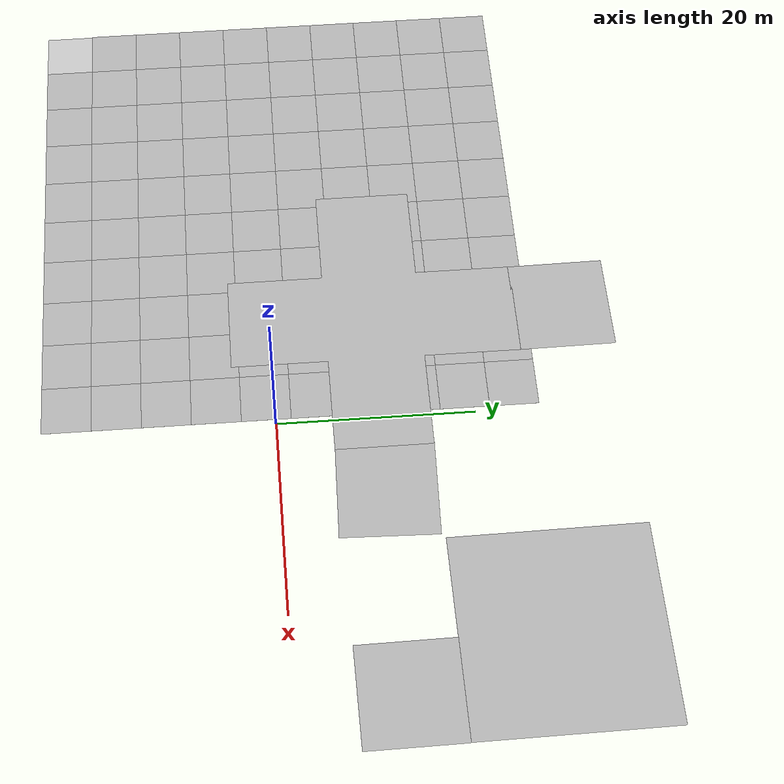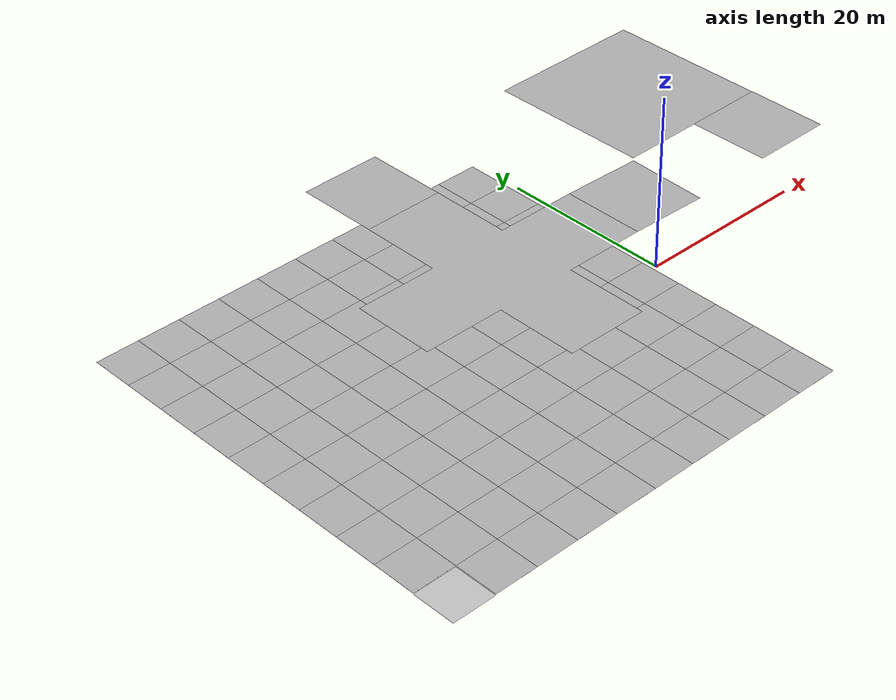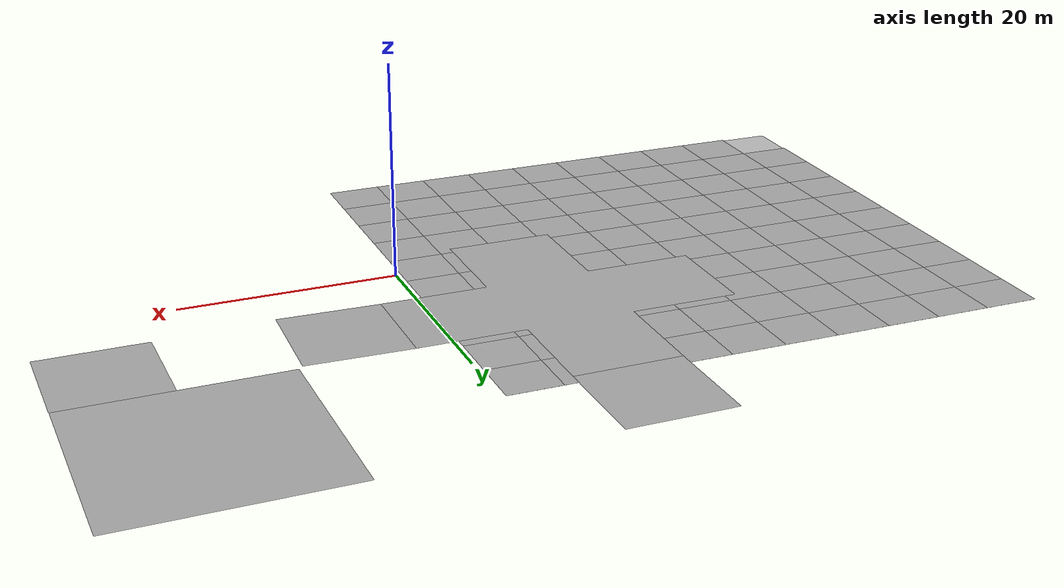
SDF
<sdf version="1.4">
 <world name="default">
  <model name="pavement_plane_1">
   <static>1</static>
   <link name="link">
    <collision name="collision">
     <geometry><plane><normal>0 0 1</normal><size>50 50</size></plane></geometry>
     <surface><friction><ode><mu>100</mu><mu2>50</mu2></ode></friction></surface>
    </collision>
    <visual name="visual_0">
     <pose>-25 -25 0 0 -0 0</pose>
     <cast_shadows>0</cast_shadows>
     <geometry><plane><normal>0 0 1</normal><size>5 5</size></plane></geometry>
     <material>
      <script>
       <uri>model://pavement_plane/materials/scripts</uri>
       <uri>model://pavement_plane/materials/textures</uri>
       <name>vrc/pavement</name>
      </script>
     </material>
    </visual>
    <visual name="visual_1">
     <pose>-20 -25 0 0 -0 0</pose>
     <cast_shadows>0</cast_shadows>
     <geometry><plane><normal>0 0 1</normal><size>5 5</size></plane></geometry>
     <material>
      <script>
       <uri>model://pavement_plane/materials/scripts</uri>
       <uri>model://pavement_plane/materials/textures</uri>
       <name>vrc/pavement</name>
      </script>
     </material>
    </visual>
    <visual name="visual_2">
     <pose>-15 -25 0 0 -0 0</pose>
     <cast_shadows>0</cast_shadows>
     <geometry><plane><normal>0 0 1</normal><size>5 5</size></plane></geometry>
     <material>
      <script>
       <uri>model://pavement_plane/materials/scripts</uri>
       <uri>model://pavement_plane/materials/textures</uri>
       <name>vrc/pavement</name>
      </script>
     </material>
    </visual>
    <visual name="visual_3">
     <pose>-10 -25 0 0 -0 0</pose>
     <cast_shadows>0</cast_shadows>
     <geometry><plane><normal>0 0 1</normal><size>5 5</size></plane></geometry>
     <material>
      <script>
       <uri>model://pavement_plane/materials/scripts</uri>
       <uri>model://pavement_plane/materials/textures</uri>
       <name>vrc/pavement</name>
      </script>
     </material>
    </visual>
    <visual name="visual_4">
     <pose>-5 -25 0 0 -0 0</pose>
     <cast_shadows>0</cast_shadows>
     <geometry><plane><normal>0 0 1</normal><size>5 5</size></plane></geometry>
     <material>
      <script>
       <uri>model://pavement_plane/materials/scripts</uri>
       <uri>model://pavement_plane/materials/textures</uri>
       <name>vrc/pavement</name>
      </script>
     </material>
    </visual>
    <visual name="visual_5">
     <pose>0 -25 0 0 -0 0</pose>
     <cast_shadows>0</cast_shadows>
     <geometry><plane><normal>0 0 1</normal><size>5 5</size></plane></geometry>
     <material>
      <script>
       <uri>model://pavement_plane/materials/scripts</uri>
       <uri>model://pavement_plane/materials/textures</uri>
       <name>vrc/pavement</name>
      </script>
     </material>
    </visual>
    <visual name="visual_6">
     <pose>5 -25 0 0 -0 0</pose>
     <cast_shadows>0</cast_shadows>
     <geometry><plane><normal>0 0 1</normal><size>5 5</size></plane></geometry>
     <material>
      <script>
       <uri>model://pavement_plane/materials/scripts</uri>
       <uri>model://pavement_plane/materials/textures</uri>
       <name>vrc/pavement</name>
      </script>
     </material>
    </visual>
    <visual name="visual_7">
     <pose>10 -25 0 0 -0 0</pose>
     <cast_shadows>0</cast_shadows>
     <geometry><plane><normal>0 0 1</normal><size>5 5</size></plane></geometry>
     <material>
      <script>
       <uri>model://pavement_plane/materials/scripts</uri>
       <uri>model://pavement_plane/materials/textures</uri>
       <name>vrc/pavement</name>
      </script>
     </material>
    </visual>
    <visual name="visual_8">
     <pose>15 -25 0 0 -0 0</pose>
     <cast_shadows>0</cast_shadows>
     <geometry><plane><normal>0 0 1</normal><size>5 5</size></plane></geometry>
     <material>
      <script>
       <uri>model://pavement_plane/materials/scripts</uri>
       <uri>model://pavement_plane/materials/textures</uri>
       <name>vrc/pavement</name>
      </script>
     </material>
    </visual>
    <visual name="visual_9">
     <pose>20 -25 0 0 -0 0</pose>
     <cast_shadows>0</cast_shadows>
     <geometry><plane><normal>0 0 1</normal><size>5 5</size></plane></geometry>
     <material>
      <script>
       <uri>model://pavement_plane/materials/scripts</uri>
       <uri>model://pavement_plane/materials/textures</uri>
       <name>vrc/pavement</name>
      </script>
     </material>
    </visual>
    <visual name="visual_10">
     <pose>-25 -20 0 0 -0 0</pose>
     <cast_shadows>0</cast_shadows>
     <geometry><plane><normal>0 0 1</normal><size>5 5</size></plane></geometry>
     <material>
      <script>
       <uri>model://pavement_plane/materials/scripts</uri>
       <uri>model://pavement_plane/materials/textures</uri>
       <name>vrc/pavement</name>
      </script>
     </material>
    </visual>
    <visual name="visual_11">
     <pose>-20 -20 0 0 -0 0</pose>
     <cast_shadows>0</cast_shadows>
     <geometry><plane><normal>0 0 1</normal><size>5 5</size></plane></geometry>
     <material>
      <script>
       <uri>model://pavement_plane/materials/scripts</uri>
       <uri>model://pavement_plane/materials/textures</uri>
       <name>vrc/pavement</name>
      </script>
     </material>
    </visual>
    <visual name="visual_12">
     <pose>-15 -20 0 0 -0 0</pose>
     <cast_shadows>0</cast_shadows>
     <geometry><plane><normal>0 0 1</normal><size>5 5</size></plane></geometry>
     <material>
      <script>
       <uri>model://pavement_plane/materials/scripts</uri>
       <uri>model://pavement_plane/materials/textures</uri>
       <name>vrc/pavement</name>
      </script>
     </material>
    </visual>
    <visual name="visual_13">
     <pose>-10 -20 0 0 -0 0</pose>
     <cast_shadows>0</cast_shadows>
     <geometry><plane><normal>0 0 1</normal><size>5 5</size></plane></geometry>
     <material>
      <script>
       <uri>model://pavement_plane/materials/scripts</uri>
       <uri>model://pavement_plane/materials/textures</uri>
       <name>vrc/pavement</name>
      </script>
     </material>
    </visual>
    <visual name="visual_14">
     <pose>-5 -20 0 0 -0 0</pose>
     <cast_shadows>0</cast_shadows>
     <geometry><plane><normal>0 0 1</normal><size>5 5</size></plane></geometry>
     <material>
      <script>
       <uri>model://pavement_plane/materials/scripts</uri>
       <uri>model://pavement_plane/materials/textures</uri>
       <name>vrc/pavement</name>
      </script>
     </material>
    </visual>
    <visual name="visual_15">
     <pose>0 -20 0 0 -0 0</pose>
     <cast_shadows>0</cast_shadows>
     <geometry><plane><normal>0 0 1</normal><size>5 5</size></plane></geometry>
     <material>
      <script>
       <uri>model://pavement_plane/materials/scripts</uri>
       <uri>model://pavement_plane/materials/textures</uri>
       <name>vrc/pavement</name>
      </script>
     </material>
    </visual>
    <visual name="visual_16">
     <pose>5 -20 0 0 -0 0</pose>
     <cast_shadows>0</cast_shadows>
     <geometry><plane><normal>0 0 1</normal><size>5 5</size></plane></geometry>
     <material>
      <script>
       <uri>model://pavement_plane/materials/scripts</uri>
       <uri>model://pavement_plane/materials/textures</uri>
       <name>vrc/pavement</name>
      </script>
     </material>
    </visual>
    <visual name="visual_17">
     <pose>10 -20 0 0 -0 0</pose>
     <cast_shadows>0</cast_shadows>
     <geometry><plane><normal>0 0 1</normal><size>5 5</size></plane></geometry>
     <material>
      <script>
       <uri>model://pavement_plane/materials/scripts</uri>
       <uri>model://pavement_plane/materials/textures</uri>
       <name>vrc/pavement</name>
      </script>
     </material>
    </visual>
    <visual name="visual_18">
     <pose>15 -20 0 0 -0 0</pose>
     <cast_shadows>0</cast_shadows>
     <geometry><plane><normal>0 0 1</normal><size>5 5</size></plane></geometry>
     <material>
      <script>
       <uri>model://pavement_plane/materials/scripts</uri>
       <uri>model://pavement_plane/materials/textures</uri>
       <name>vrc/pavement</name>
      </script>
     </material>
    </visual>
    <visual name="visual_19">
     <pose>20 -20 0 0 -0 0</pose>
     <cast_shadows>0</cast_shadows>
     <geometry><plane><normal>0 0 1</normal><size>5 5</size></plane></geometry>
     <material>
      <script>
       <uri>model://pavement_plane/materials/scripts</uri>
       <uri>model://pavement_plane/materials/textures</uri>
       <name>vrc/pavement</name>
      </script>
     </material>
    </visual>
    <visual name="visual_20">
     <pose>-25 -15 0 0 -0 0</pose>
     <cast_shadows>0</cast_shadows>
     <geometry><plane><normal>0 0 1</normal><size>5 5</size></plane></geometry>
     <material>
      <script>
       <uri>model://pavement_plane/materials/scripts</uri>
       <uri>model://pavement_plane/materials/textures</uri>
       <name>vrc/pavement</name>
      </script>
     </material>
    </visual>
    <visual name="visual_21">
     <pose>-20 -15 0 0 -0 0</pose>
     <cast_shadows>0</cast_shadows>
     <geometry><plane><normal>0 0 1</normal><size>5 5</size></plane></geometry>
     <material>
      <script>
       <uri>model://pavement_plane/materials/scripts</uri>
       <uri>model://pavement_plane/materials/textures</uri>
       <name>vrc/pavement</name>
      </script>
     </material>
    </visual>
    <visual name="visual_22">
     <pose>-15 -15 0 0 -0 0</pose>
     <cast_shadows>0</cast_shadows>
     <geometry><plane><normal>0 0 1</normal><size>5 5</size></plane></geometry>
     <material>
      <script>
       <uri>model://pavement_plane/materials/scripts</uri>
       <uri>model://pavement_plane/materials/textures</uri>
       <name>vrc/pavement</name>
      </script>
     </material>
    </visual>
    <visual name="visual_23">
     <pose>-10 -15 0 0 -0 0</pose>
     <cast_shadows>0</cast_shadows>
     <geometry><plane><normal>0 0 1</normal><size>5 5</size></plane></geometry>
     <material>
      <script>
       <uri>model://pavement_plane/materials/scripts</uri>
       <uri>model://pavement_plane/materials/textures</uri>
       <name>vrc/pavement</name>
      </script>
     </material>
    </visual>
    <visual name="visual_24">
     <pose>-5 -15 0 0 -0 0</pose>
     <cast_shadows>0</cast_shadows>
     <geometry><plane><normal>0 0 1</normal><size>5 5</size></plane></geometry>
     <material>
      <script>
       <uri>model://pavement_plane/materials/scripts</uri>
       <uri>model://pavement_plane/materials/textures</uri>
       <name>vrc/pavement</name>
      </script>
     </material>
    </visual>
    <visual name="visual_25">
     <pose>0 -15 0 0 -0 0</pose>
     <cast_shadows>0</cast_shadows>
     <geometry><plane><normal>0 0 1</normal><size>5 5</size></plane></geometry>
     <material>
      <script>
       <uri>model://pavement_plane/materials/scripts</uri>
       <uri>model://pavement_plane/materials/textures</uri>
       <name>vrc/pavement</name>
      </script>
     </material>
    </visual>
    <visual name="visual_26">
     <pose>5 -15 0 0 -0 0</pose>
     <cast_shadows>0</cast_shadows>
     <geometry><plane><normal>0 0 1</normal><size>5 5</size></plane></geometry>
     <material>
      <script>
       <uri>model://pavement_plane/materials/scripts</uri>
       <uri>model://pavement_plane/materials/textures</uri>
       <name>vrc/pavement</name>
      </script>
     </material>
    </visual>
    <visual name="visual_27">
     <pose>10 -15 0 0 -0 0</pose>
     <cast_shadows>0</cast_shadows>
     <geometry><plane><normal>0 0 1</normal><size>5 5</size></plane></geometry>
     <material>
      <script>
       <uri>model://pavement_plane/materials/scripts</uri>
       <uri>model://pavement_plane/materials/textures</uri>
       <name>vrc/pavement</name>
      </script>
     </material>
    </visual>
    <visual name="visual_28">
     <pose>15 -15 0 0 -0 0</pose>
     <cast_shadows>0</cast_shadows>
     <geometry><plane><normal>0 0 1</normal><size>5 5</size></plane></geometry>
     <material>
      <script>
       <uri>model://pavement_plane/materials/scripts</uri>
       <uri>model://pavement_plane/materials/textures</uri>
       <name>vrc/pavement</name>
      </script>
     </material>
    </visual>
    <visual name="visual_29">
     <pose>20 -15 0 0 -0 0</pose>
     <cast_shadows>0</cast_shadows>
     <geometry><plane><normal>0 0 1</normal><size>5 5</size></plane></geometry>
     <material>
      <script>
       <uri>model://pavement_plane/materials/scripts</uri>
       <uri>model://pavement_plane/materials/textures</uri>
       <name>vrc/pavement</name>
      </script>
     </material>
    </visual>
    <visual name="visual_30">
     <pose>-25 -10 0 0 -0 0</pose>
     <cast_shadows>0</cast_shadows>
     <geometry><plane><normal>0 0 1</normal><size>5 5</size></plane></geometry>
     <material>
      <script>
       <uri>model://pavement_plane/materials/scripts</uri>
       <uri>model://pavement_plane/materials/textures</uri>
       <name>vrc/pavement</name>
      </script>
     </material>
    </visual>
    <visual name="visual_31">
     <pose>-20 -10 0 0 -0 0</pose>
     <cast_shadows>0</cast_shadows>
     <geometry><plane><normal>0 0 1</normal><size>5 5</size></plane></geometry>
     <material>
      <script>
       <uri>model://pavement_plane/materials/scripts</uri>
       <uri>model://pavement_plane/materials/textures</uri>
       <name>vrc/pavement</name>
      </script>
     </material>
    </visual>
    <visual name="visual_32">
     <pose>-15 -10 0 0 -0 0</pose>
     <cast_shadows>0</cast_shadows>
     <geometry><plane><normal>0 0 1</normal><size>5 5</size></plane></geometry>
     <material>
      <script>
       <uri>model://pavement_plane/materials/scripts</uri>
       <uri>model://pavement_plane/materials/textures</uri>
       <name>vrc/pavement</name>
      </script>
     </material>
    </visual>
    <visual name="visual_33">
     <pose>-10 -10 0 0 -0 0</pose>
     <cast_shadows>0</cast_shadows>
     <geometry><plane><normal>0 0 1</normal><size>5 5</size></plane></geometry>
     <material>
      <script>
       <uri>model://pavement_plane/materials/scripts</uri>
       <uri>model://pavement_plane/materials/textures</uri>
       <name>vrc/pavement</name>
      </script>
     </material>
    </visual>
    <visual name="visual_34">
     <pose>-5 -10 0 0 -0 0</pose>
     <cast_shadows>0</cast_shadows>
     <geometry><plane><normal>0 0 1</normal><size>5 5</size></plane></geometry>
     <material>
      <script>
       <uri>model://pavement_plane/materials/scripts</uri>
       <uri>model://pavement_plane/materials/textures</uri>
       <name>vrc/pavement</name>
      </script>
     </material>
    </visual>
    <visual name="visual_35">
     <pose>0 -10 0 0 -0 0</pose>
     <cast_shadows>0</cast_shadows>
     <geometry><plane><normal>0 0 1</normal><size>5 5</size></plane></geometry>
     <material>
      <script>
       <uri>model://pavement_plane/materials/scripts</uri>
       <uri>model://pavement_plane/materials/textures</uri>
       <name>vrc/pavement</name>
      </script>
     </material>
    </visual>
    <visual name="visual_36">
     <pose>5 -10 0 0 -0 0</pose>
     <cast_shadows>0</cast_shadows>
     <geometry><plane><normal>0 0 1</normal><size>5 5</size></plane></geometry>
     <material>
      <script>
       <uri>model://pavement_plane/materials/scripts</uri>
       <uri>model://pavement_plane/materials/textures</uri>
       <name>vrc/pavement</name>
      </script>
     </material>
    </visual>
    <visual name="visual_37">
     <pose>10 -10 0 0 -0 0</pose>
     <cast_shadows>0</cast_shadows>
     <geometry><plane><normal>0 0 1</normal><size>5 5</size></plane></geometry>
     <material>
      <script>
       <uri>model://pavement_plane/materials/scripts</uri>
       <uri>model://pavement_plane/materials/textures</uri>
       <name>vrc/pavement</name>
      </script>
     </material>
    </visual>
    <visual name="visual_38">
     <pose>15 -10 0 0 -0 0</pose>
     <cast_shadows>0</cast_shadows>
     <geometry><plane><normal>0 0 1</normal><size>5 5</size></plane></geometry>
     <material>
      <script>
       <uri>model://pavement_plane/materials/scripts</uri>
       <uri>model://pavement_plane/materials/textures</uri>
       <name>vrc/pavement</name>
      </script>
     </material>
    </visual>
    <visual name="visual_39">
     <pose>20 -10 0 0 -0 0</pose>
     <cast_shadows>0</cast_shadows>
     <geometry><plane><normal>0 0 1</normal><size>5 5</size></plane></geometry>
     <material>
      <script>
       <uri>model://pavement_plane/materials/scripts</uri>
       <uri>model://pavement_plane/materials/textures</uri>
       <name>vrc/pavement</name>
      </script>
     </material>
    </visual>
    <visual name="visual_40">
     <pose>-25 -5 0 0 -0 0</pose>
     <cast_shadows>0</cast_shadows>
     <geometry><plane><normal>0 0 1</normal><size>5 5</size></plane></geometry>
     <material>
      <script>
       <uri>model://pavement_plane/materials/scripts</uri>
       <uri>model://pavement_plane/materials/textures</uri>
       <name>vrc/pavement</name>
      </script>
     </material>
    </visual>
    <visual name="visual_41">
     <pose>-20 -5 0 0 -0 0</pose>
     <cast_shadows>0</cast_shadows>
     <geometry><plane><normal>0 0 1</normal><size>5 5</size></plane></geometry>
     <material>
      <script>
       <uri>model://pavement_plane/materials/scripts</uri>
       <uri>model://pavement_plane/materials/textures</uri>
       <name>vrc/pavement</name>
      </script>
     </material>
    </visual>
    <visual name="visual_42">
     <pose>-15 -5 0 0 -0 0</pose>
     <cast_shadows>0</cast_shadows>
     <geometry><plane><normal>0 0 1</normal><size>5 5</size></plane></geometry>
     <material>
      <script>
       <uri>model://pavement_plane/materials/scripts</uri>
       <uri>model://pavement_plane/materials/textures</uri>
       <name>vrc/pavement</name>
      </script>
     </material>
    </visual>
    <visual name="visual_43">
     <pose>-10 -5 0 0 -0 0</pose>
     <cast_shadows>0</cast_shadows>
     <geometry><plane><normal>0 0 1</normal><size>5 5</size></plane></geometry>
     <material>
      <script>
       <uri>model://pavement_plane/materials/scripts</uri>
       <uri>model://pavement_plane/materials/textures</uri>
       <name>vrc/pavement</name>
      </script>
     </material>
    </visual>
    <visual name="visual_44">
     <pose>-5 -5 0 0 -0 0</pose>
     <cast_shadows>0</cast_shadows>
     <geometry><plane><normal>0 0 1</normal><size>5 5</size></plane></geometry>
     <material>
      <script>
       <uri>model://pavement_plane/materials/scripts</uri>
       <uri>model://pavement_plane/materials/textures</uri>
       <name>vrc/pavement</name>
      </script>
     </material>
    </visual>
    <visual name="visual_45">
     <pose>0 -5 0 0 -0 0</pose>
     <cast_shadows>0</cast_shadows>
     <geometry><plane><normal>0 0 1</normal><size>5 5</size></plane></geometry>
     <material>
      <script>
       <uri>model://pavement_plane/materials/scripts</uri>
       <uri>model://pavement_plane/materials/textures</uri>
       <name>vrc/pavement</name>
      </script>
     </material>
    </visual>
    <visual name="visual_46">
     <pose>5 -5 0 0 -0 0</pose>
     <cast_shadows>0</cast_shadows>
     <geometry><plane><normal>0 0 1</normal><size>5 5</size></plane></geometry>
     <material>
      <script>
       <uri>model://pavement_plane/materials/scripts</uri>
       <uri>model://pavement_plane/materials/textures</uri>
       <name>vrc/pavement</name>
      </script>
     </material>
    </visual>
    <visual name="visual_47">
     <pose>10 -5 0 0 -0 0</pose>
     <cast_shadows>0</cast_shadows>
     <geometry><plane><normal>0 0 1</normal><size>5 5</size></plane></geometry>
     <material>
      <script>
       <uri>model://pavement_plane/materials/scripts</uri>
       <uri>model://pavement_plane/materials/textures</uri>
       <name>vrc/pavement</name>
      </script>
     </material>
    </visual>
    <visual name="visual_48">
     <pose>15 -5 0 0 -0 0</pose>
     <cast_shadows>0</cast_shadows>
     <geometry><plane><normal>0 0 1</normal><size>5 5</size></plane></geometry>
     <material>
      <script>
       <uri>model://pavement_plane/materials/scripts</uri>
       <uri>model://pavement_plane/materials/textures</uri>
       <name>vrc/pavement</name>
      </script>
     </material>
    </visual>
    <visual name="visual_49">
     <pose>20 -5 0 0 -0 0</pose>
     <cast_shadows>0</cast_shadows>
     <geometry><plane><normal>0 0 1</normal><size>5 5</size></plane></geometry>
     <material>
      <script>
       <uri>model://pavement_plane/materials/scripts</uri>
       <uri>model://pavement_plane/materials/textures</uri>
       <name>vrc/pavement</name>
      </script>
     </material>
    </visual>
    <visual name="visual_50">
     <pose>-25 0 0 0 -0 0</pose>
     <cast_shadows>0</cast_shadows>
     <geometry><plane><normal>0 0 1</normal><size>5 5</size></plane></geometry>
     <material>
      <script>
       <uri>model://pavement_plane/materials/scripts</uri>
       <uri>model://pavement_plane/materials/textures</uri>
       <name>vrc/pavement</name>
      </script>
     </material>
    </visual>
    <visual name="visual_51">
     <pose>-20 0 0 0 -0 0</pose>
     <cast_shadows>0</cast_shadows>
     <geometry><plane><normal>0 0 1</normal><size>5 5</size></plane></geometry>
     <material>
      <script>
       <uri>model://pavement_plane/materials/scripts</uri>
       <uri>model://pavement_plane/materials/textures</uri>
       <name>vrc/pavement</name>
      </script>
     </material>
    </visual>
    <visual name="visual_52">
     <pose>-15 0 0 0 -0 0</pose>
     <cast_shadows>0</cast_shadows>
     <geometry><plane><normal>0 0 1</normal><size>5 5</size></plane></geometry>
     <material>
      <script>
       <uri>model://pavement_plane/materials/scripts</uri>
       <uri>model://pavement_plane/materials/textures</uri>
       <name>vrc/pavement</name>
      </script>
     </material>
    </visual>
    <visual name="visual_53">
     <pose>-10 0 0 0 -0 0</pose>
     <cast_shadows>0</cast_shadows>
     <geometry><plane><normal>0 0 1</normal><size>5 5</size></plane></geometry>
     <material>
      <script>
       <uri>model://pavement_plane/materials/scripts</uri>
       <uri>model://pavement_plane/materials/textures</uri>
       <name>vrc/pavement</name>
      </script>
     </material>
    </visual>
    <visual name="visual_54">
     <pose>-5 0 0 0 -0 0</pose>
     <cast_shadows>0</cast_shadows>
     <geometry><plane><normal>0 0 1</normal><size>5 5</size></plane></geometry>
     <material>
      <script>
       <uri>model://pavement_plane/materials/scripts</uri>
       <uri>model://pavement_plane/materials/textures</uri>
       <name>vrc/pavement</name>
      </script>
     </material>
    </visual>
    <visual name="visual_55">
     <cast_shadows>0</cast_shadows>
     <geometry><plane><normal>0 0 1</normal><size>5 5</size></plane></geometry>
     <material>
      <script>
       <uri>model://pavement_plane/materials/scripts</uri>
       <uri>model://pavement_plane/materials/textures</uri>
       <name>vrc/pavement</name>
      </script>
     </material>
    </visual>
    <visual name="visual_56">
     <pose>5 0 0 0 -0 0</pose>
     <cast_shadows>0</cast_shadows>
     <geometry><plane><normal>0 0 1</normal><size>5 5</size></plane></geometry>
     <material>
      <script>
       <uri>model://pavement_plane/materials/scripts</uri>
       <uri>model://pavement_plane/materials/textures</uri>
       <name>vrc/pavement</name>
      </script>
     </material>
    </visual>
    <visual name="visual_57">
     <pose>10 0 0 0 -0 0</pose>
     <cast_shadows>0</cast_shadows>
     <geometry><plane><normal>0 0 1</normal><size>5 5</size></plane></geometry>
     <material>
      <script>
       <uri>model://pavement_plane/materials/scripts</uri>
       <uri>model://pavement_plane/materials/textures</uri>
       <name>vrc/pavement</name>
      </script>
     </material>
    </visual>
    <visual name="visual_58">
     <pose>15 0 0 0 -0 0</pose>
     <cast_shadows>0</cast_shadows>
     <geometry><plane><normal>0 0 1</normal><size>5 5</size></plane></geometry>
     <material>
      <script>
       <uri>model://pavement_plane/materials/scripts</uri>
       <uri>model://pavement_plane/materials/textures</uri>
       <name>vrc/pavement</name>
      </script>
     </material>
    </visual>
    <visual name="visual_59">
     <pose>20 0 0 0 -0 0</pose>
     <cast_shadows>0</cast_shadows>
     <geometry><plane><normal>0 0 1</normal><size>5 5</size></plane></geometry>
     <material>
      <script>
       <uri>model://pavement_plane/materials/scripts</uri>
       <uri>model://pavement_plane/materials/textures</uri>
       <name>vrc/pavement</name>
      </script>
     </material>
    </visual>
    <visual name="visual_60">
     <pose>-25 5 0 0 -0 0</pose>
     <cast_shadows>0</cast_shadows>
     <geometry><plane><normal>0 0 1</normal><size>5 5</size></plane></geometry>
     <material>
      <script>
       <uri>model://pavement_plane/materials/scripts</uri>
       <uri>model://pavement_plane/materials/textures</uri>
       <name>vrc/pavement</name>
      </script>
     </material>
    </visual>
    <visual name="visual_61">
     <pose>-20 5 0 0 -0 0</pose>
     <cast_shadows>0</cast_shadows>
     <geometry><plane><normal>0 0 1</normal><size>5 5</size></plane></geometry>
     <material>
      <script>
       <uri>model://pavement_plane/materials/scripts</uri>
       <uri>model://pavement_plane/materials/textures</uri>
       <name>vrc/pavement</name>
      </script>
     </material>
    </visual>
    <visual name="visual_62">
     <pose>-15 5 0 0 -0 0</pose>
     <cast_shadows>0</cast_shadows>
     <geometry><plane><normal>0 0 1</normal><size>5 5</size></plane></geometry>
     <material>
      <script>
       <uri>model://pavement_plane/materials/scripts</uri>
       <uri>model://pavement_plane/materials/textures</uri>
       <name>vrc/pavement</name>
      </script>
     </material>
    </visual>
    <visual name="visual_63">
     <pose>-10 5 0 0 -0 0</pose>
     <cast_shadows>0</cast_shadows>
     <geometry><plane><normal>0 0 1</normal><size>5 5</size></plane></geometry>
     <material>
      <script>
       <uri>model://pavement_plane/materials/scripts</uri>
       <uri>model://pavement_plane/materials/textures</uri>
       <name>vrc/pavement</name>
      </script>
     </material>
    </visual>
    <visual name="visual_64">
     <pose>-5 5 0 0 -0 0</pose>
     <cast_shadows>0</cast_shadows>
     <geometry><plane><normal>0 0 1</normal><size>5 5</size></plane></geometry>
     <material>
      <script>
       <uri>model://pavement_plane/materials/scripts</uri>
       <uri>model://pavement_plane/materials/textures</uri>
       <name>vrc/pavement</name>
      </script>
     </material>
    </visual>
    <visual name="visual_65">
     <pose>0 5 0 0 -0 0</pose>
     <cast_shadows>0</cast_shadows>
     <geometry><plane><normal>0 0 1</normal><size>5 5</size></plane></geometry>
     <material>
      <script>
       <uri>model://pavement_plane/materials/scripts</uri>
       <uri>model://pavement_plane/materials/textures</uri>
       <name>vrc/pavement</name>
      </script>
     </material>
    </visual>
    <visual name="visual_66">
     <pose>5 5 0 0 -0 0</pose>
     <cast_shadows>0</cast_shadows>
     <geometry><plane><normal>0 0 1</normal><size>5 5</size></plane></geometry>
     <material>
      <script>
       <uri>model://pavement_plane/materials/scripts</uri>
       <uri>model://pavement_plane/materials/textures</uri>
       <name>vrc/pavement</name>
      </script>
     </material>
    </visual>
    <visual name="visual_67">
     <pose>10 5 0 0 -0 0</pose>
     <cast_shadows>0</cast_shadows>
     <geometry><plane><normal>0 0 1</normal><size>5 5</size></plane></geometry>
     <material>
      <script>
       <uri>model://pavement_plane/materials/scripts</uri>
       <uri>model://pavement_plane/materials/textures</uri>
       <name>vrc/pavement</name>
      </script>
     </material>
    </visual>
    <visual name="visual_68">
     <pose>15 5 0 0 -0 0</pose>
     <cast_shadows>0</cast_shadows>
     <geometry><plane><normal>0 0 1</normal><size>5 5</size></plane></geometry>
     <material>
      <script>
       <uri>model://pavement_plane/materials/scripts</uri>
       <uri>model://pavement_plane/materials/textures</uri>
       <name>vrc/pavement</name>
      </script>
     </material>
    </visual>
    <visual name="visual_69">
     <pose>20 5 0 0 -0 0</pose>
     <cast_shadows>0</cast_shadows>
     <geometry><plane><normal>0 0 1</normal><size>5 5</size></plane></geometry>
     <material>
      <script>
       <uri>model://pavement_plane/materials/scripts</uri>
       <uri>model://pavement_plane/materials/textures</uri>
       <name>vrc/pavement</name>
      </script>
     </material>
    </visual>
    <visual name="visual_70">
     <pose>-25 10 0 0 -0 0</pose>
     <cast_shadows>0</cast_shadows>
     <geometry><plane><normal>0 0 1</normal><size>5 5</size></plane></geometry>
     <material>
      <script>
       <uri>model://pavement_plane/materials/scripts</uri>
       <uri>model://pavement_plane/materials/textures</uri>
       <name>vrc/pavement</name>
      </script>
     </material>
    </visual>
    <visual name="visual_71">
     <pose>-20 10 0 0 -0 0</pose>
     <cast_shadows>0</cast_shadows>
     <geometry><plane><normal>0 0 1</normal><size>5 5</size></plane></geometry>
     <material>
      <script>
       <uri>model://pavement_plane/materials/scripts</uri>
       <uri>model://pavement_plane/materials/textures</uri>
       <name>vrc/pavement</name>
      </script>
     </material>
    </visual>
    <visual name="visual_72">
     <pose>-15 10 0 0 -0 0</pose>
     <cast_shadows>0</cast_shadows>
     <geometry><plane><normal>0 0 1</normal><size>5 5</size></plane></geometry>
     <material>
      <script>
       <uri>model://pavement_plane/materials/scripts</uri>
       <uri>model://pavement_plane/materials/textures</uri>
       <name>vrc/pavement</name>
      </script>
     </material>
    </visual>
    <visual name="visual_73">
     <pose>-10 10 0 0 -0 0</pose>
     <cast_shadows>0</cast_shadows>
     <geometry><plane><normal>0 0 1</normal><size>5 5</size></plane></geometry>
     <material>
      <script>
       <uri>model://pavement_plane/materials/scripts</uri>
       <uri>model://pavement_plane/materials/textures</uri>
       <name>vrc/pavement</name>
      </script>
     </material>
    </visual>
    <visual name="visual_74">
     <pose>-5 10 0 0 -0 0</pose>
     <cast_shadows>0</cast_shadows>
     <geometry><plane><normal>0 0 1</normal><size>5 5</size></plane></geometry>
     <material>
      <script>
       <uri>model://pavement_plane/materials/scripts</uri>
       <uri>model://pavement_plane/materials/textures</uri>
       <name>vrc/pavement</name>
      </script>
     </material>
    </visual>
    <visual name="visual_75">
     <pose>0 10 0 0 -0 0</pose>
     <cast_shadows>0</cast_shadows>
     <geometry><plane><normal>0 0 1</normal><size>5 5</size></plane></geometry>
     <material>
      <script>
       <uri>model://pavement_plane/materials/scripts</uri>
       <uri>model://pavement_plane/materials/textures</uri>
       <name>vrc/pavement</name>
      </script>
     </material>
    </visual>
    <visual name="visual_76">
     <pose>5 10 0 0 -0 0</pose>
     <cast_shadows>0</cast_shadows>
     <geometry><plane><normal>0 0 1</normal><size>5 5</size></plane></geometry>
     <material>
      <script>
       <uri>model://pavement_plane/materials/scripts</uri>
       <uri>model://pavement_plane/materials/textures</uri>
       <name>vrc/pavement</name>
      </script>
     </material>
    </visual>
    <visual name="visual_77">
     <pose>10 10 0 0 -0 0</pose>
     <cast_shadows>0</cast_shadows>
     <geometry><plane><normal>0 0 1</normal><size>5 5</size></plane></geometry>
     <material>
      <script>
       <uri>model://pavement_plane/materials/scripts</uri>
       <uri>model://pavement_plane/materials/textures</uri>
       <name>vrc/pavement</name>
      </script>
     </material>
    </visual>
    <visual name="visual_78">
     <pose>15 10 0 0 -0 0</pose>
     <cast_shadows>0</cast_shadows>
     <geometry><plane><normal>0 0 1</normal><size>5 5</size></plane></geometry>
     <material>
      <script>
       <uri>model://pavement_plane/materials/scripts</uri>
       <uri>model://pavement_plane/materials/textures</uri>
       <name>vrc/pavement</name>
      </script>
     </material>
    </visual>
    <visual name="visual_79">
     <pose>20 10 0 0 -0 0</pose>
     <cast_shadows>0</cast_shadows>
     <geometry><plane><normal>0 0 1</normal><size>5 5</size></plane></geometry>
     <material>
      <script>
       <uri>model://pavement_plane/materials/scripts</uri>
       <uri>model://pavement_plane/materials/textures</uri>
       <name>vrc/pavement</name>
      </script>
     </material>
    </visual>
    <visual name="visual_80">
     <pose>-25 15 0 0 -0 0</pose>
     <cast_shadows>0</cast_shadows>
     <geometry><plane><normal>0 0 1</normal><size>5 5</size></plane></geometry>
     <material>
      <script>
       <uri>model://pavement_plane/materials/scripts</uri>
       <uri>model://pavement_plane/materials/textures</uri>
       <name>vrc/pavement</name>
      </script>
     </material>
    </visual>
    <visual name="visual_81">
     <pose>-20 15 0 0 -0 0</pose>
     <cast_shadows>0</cast_shadows>
     <geometry><plane><normal>0 0 1</normal><size>5 5</size></plane></geometry>
     <material>
      <script>
       <uri>model://pavement_plane/materials/scripts</uri>
       <uri>model://pavement_plane/materials/textures</uri>
       <name>vrc/pavement</name>
      </script>
     </material>
    </visual>
    <visual name="visual_82">
     <pose>-15 15 0 0 -0 0</pose>
     <cast_shadows>0</cast_shadows>
     <geometry><plane><normal>0 0 1</normal><size>5 5</size></plane></geometry>
     <material>
      <script>
       <uri>model://pavement_plane/materials/scripts</uri>
       <uri>model://pavement_plane/materials/textures</uri>
       <name>vrc/pavement</name>
      </script>
     </material>
    </visual>
    <visual name="visual_83">
     <pose>-10 15 0 0 -0 0</pose>
     <cast_shadows>0</cast_shadows>
     <geometry><plane><normal>0 0 1</normal><size>5 5</size></plane></geometry>
     <material>
      <script>
       <uri>model://pavement_plane/materials/scripts</uri>
       <uri>model://pavement_plane/materials/textures</uri>
       <name>vrc/pavement</name>
      </script>
     </material>
    </visual>
    <visual name="visual_84">
     <pose>-5 15 0 0 -0 0</pose>
     <cast_shadows>0</cast_shadows>
     <geometry><plane><normal>0 0 1</normal><size>5 5</size></plane></geometry>
     <material>
      <script>
       <uri>model://pavement_plane/materials/scripts</uri>
       <uri>model://pavement_plane/materials/textures</uri>
       <name>vrc/pavement</name>
      </script>
     </material>
    </visual>
    <visual name="visual_85">
     <pose>0 15 0 0 -0 0</pose>
     <cast_shadows>0</cast_shadows>
     <geometry><plane><normal>0 0 1</normal><size>5 5</size></plane></geometry>
     <material>
      <script>
       <uri>model://pavement_plane/materials/scripts</uri>
       <uri>model://pavement_plane/materials/textures</uri>
       <name>vrc/pavement</name>
      </script>
     </material>
    </visual>
    <visual name="visual_86">
     <pose>5 15 0 0 -0 0</pose>
     <cast_shadows>0</cast_shadows>
     <geometry><plane><normal>0 0 1</normal><size>5 5</size></plane></geometry>
     <material>
      <script>
       <uri>model://pavement_plane/materials/scripts</uri>
       <uri>model://pavement_plane/materials/textures</uri>
       <name>vrc/pavement</name>
      </script>
     </material>
    </visual>
    <visual name="visual_87">
     <pose>10 15 0 0 -0 0</pose>
     <cast_shadows>0</cast_shadows>
     <geometry><plane><normal>0 0 1</normal><size>5 5</size></plane></geometry>
     <material>
      <script>
       <uri>model://pavement_plane/materials/scripts</uri>
       <uri>model://pavement_plane/materials/textures</uri>
       <name>vrc/pavement</name>
      </script>
     </material>
    </visual>
    <visual name="visual_88">
     <pose>15 15 0 0 -0 0</pose>
     <cast_shadows>0</cast_shadows>
     <geometry><plane><normal>0 0 1</normal><size>5 5</size></plane></geometry>
     <material>
      <script>
       <uri>model://pavement_plane/materials/scripts</uri>
       <uri>model://pavement_plane/materials/textures</uri>
       <name>vrc/pavement</name>
      </script>
     </material>
    </visual>
    <visual name="visual_89">
     <pose>20 15 0 0 -0 0</pose>
     <cast_shadows>0</cast_shadows>
     <geometry><plane><normal>0 0 1</normal><size>5 5</size></plane></geometry>
     <material>
      <script>
       <uri>model://pavement_plane/materials/scripts</uri>
       <uri>model://pavement_plane/materials/textures</uri>
       <name>vrc/pavement</name>
      </script>
     </material>
    </visual>
    <visual name="visual_90">
     <pose>-25 20 0 0 -0 0</pose>
     <cast_shadows>0</cast_shadows>
     <geometry><plane><normal>0 0 1</normal><size>5 5</size></plane></geometry>
     <material>
      <script>
       <uri>model://pavement_plane/materials/scripts</uri>
       <uri>model://pavement_plane/materials/textures</uri>
       <name>vrc/pavement</name>
      </script>
     </material>
    </visual>
    <visual name="visual_91">
     <pose>-20 20 0 0 -0 0</pose>
     <cast_shadows>0</cast_shadows>
     <geometry><plane><normal>0 0 1</normal><size>5 5</size></plane></geometry>
     <material>
      <script>
       <uri>model://pavement_plane/materials/scripts</uri>
       <uri>model://pavement_plane/materials/textures</uri>
       <name>vrc/pavement</name>
      </script>
     </material>
    </visual>
    <visual name="visual_92">
     <pose>-15 20 0 0 -0 0</pose>
     <cast_shadows>0</cast_shadows>
     <geometry><plane><normal>0 0 1</normal><size>5 5</size></plane></geometry>
     <material>
      <script>
       <uri>model://pavement_plane/materials/scripts</uri>
       <uri>model://pavement_plane/materials/textures</uri>
       <name>vrc/pavement</name>
      </script>
     </material>
    </visual>
    <visual name="visual_93">
     <pose>-10 20 0 0 -0 0</pose>
     <cast_shadows>0</cast_shadows>
     <geometry><plane><normal>0 0 1</normal><size>5 5</size></plane></geometry>
     <material>
      <script>
       <uri>model://pavement_plane/materials/scripts</uri>
       <uri>model://pavement_plane/materials/textures</uri>
       <name>vrc/pavement</name>
      </script>
     </material>
    </visual>
    <visual name="visual_94">
     <pose>-5 20 0 0 -0 0</pose>
     <cast_shadows>0</cast_shadows>
     <geometry><plane><normal>0 0 1</normal><size>5 5</size></plane></geometry>
     <material>
      <script>
       <uri>model://pavement_plane/materials/scripts</uri>
       <uri>model://pavement_plane/materials/textures</uri>
       <name>vrc/pavement</name>
      </script>
     </material>
    </visual>
    <visual name="visual_95">
     <pose>0 20 0 0 -0 0</pose>
     <cast_shadows>0</cast_shadows>
     <geometry><plane><normal>0 0 1</normal><size>5 5</size></plane></geometry>
     <material>
      <script>
       <uri>model://pavement_plane/materials/scripts</uri>
       <uri>model://pavement_plane/materials/textures</uri>
       <name>vrc/pavement</name>
      </script>
     </material>
    </visual>
    <visual name="visual_96">
     <pose>5 20 0 0 -0 0</pose>
     <cast_shadows>0</cast_shadows>
     <geometry><plane><normal>0 0 1</normal><size>5 5</size></plane></geometry>
     <material>
      <script>
       <uri>model://pavement_plane/materials/scripts</uri>
       <uri>model://pavement_plane/materials/textures</uri>
       <name>vrc/pavement</name>
      </script>
     </material>
    </visual>
    <visual name="visual_97">
     <pose>10 20 0 0 -0 0</pose>
     <cast_shadows>0</cast_shadows>
     <geometry><plane><normal>0 0 1</normal><size>5 5</size></plane></geometry>
     <material>
      <script>
       <uri>model://pavement_plane/materials/scripts</uri>
       <uri>model://pavement_plane/materials/textures</uri>
       <name>vrc/pavement</name>
      </script>
     </material>
    </visual>
    <visual name="visual_98">
     <pose>15 20 0 0 -0 0</pose>
     <cast_shadows>0</cast_shadows>
     <geometry><plane><normal>0 0 1</normal><size>5 5</size></plane></geometry>
     <material>
      <script>
       <uri>model://pavement_plane/materials/scripts</uri>
       <uri>model://pavement_plane/materials/textures</uri>
       <name>vrc/pavement</name>
      </script>
     </material>
    </visual>
    <visual name="visual_99">
     <pose>20 20 0 0 -0 0</pose>
     <cast_shadows>0</cast_shadows>
     <geometry><plane><normal>0 0 1</normal><size>5 5</size></plane></geometry>
     <material>
      <script>
       <uri>model://pavement_plane/materials/scripts</uri>
       <uri>model://pavement_plane/materials/textures</uri>
       <name>vrc/pavement</name>
      </script>
     </material>
    </visual>
    <velocity_decay><linear>0</linear><angular>0</angular></velocity_decay>
   </link>
   <pose>-23 4 0 0 -0 0</pose>
  </model>
  <model name="Road_straight_8">
   <static>1</static>
   <pose>28.1633 11.0582 0 0 0 -1.56</pose>
   <link name="link">
    <visual name="visual">
     <pose>0 0 0.04 0 -0 0</pose>
     <geometry>
      <mesh><uri>model://Road_straight/models/Road 01.dae</uri><scale>0.39 0.39 1</scale></mesh>
     </geometry>
    </visual>
    <velocity_decay><linear>0</linear><angular>0</angular></velocity_decay>
   </link>
  </model>
  <model name="Road_curve">
   <static>1</static>
   <pose>23.7554 26.3501 -0.33 0 0 -1.56</pose>
   <link name="link">
    <visual name="visual">
     <pose>0 0 -7.5 0 -0 0</pose>
     <geometry><mesh><uri>model://Road_curve/models/Road 06.dae</uri><scale>0.39 0.39 1</scale></mesh></geometry>
    </visual>
    <velocity_decay><linear>0</linear><angular>0</angular></velocity_decay>
   </link>
  </model>
  <model name="Road_straight_15">
   <static>1</static>
   <pose>-11.7124 30.4369 0 0 0 -1.56</pose>
   <link name="link">
    <visual name="visual">
     <pose>0 0 0.04 0 -0 0</pose>
     <geometry>
      <mesh><uri>model://Road_straight/models/Road 01.dae</uri><scale>0.39 0.39 1</scale></mesh>
     </geometry>
    </visual>
    <velocity_decay><linear>0</linear><angular>0</angular></velocity_decay>
   </link>
  </model>
  <model name="Road_cross">
   <static>1</static>
   <pose>-11.5676 10.622 0 0 -0 0</pose>
   <link name="link">
    <visual name="visual">
     <pose>0 0 0.04 0 -0 0</pose>
     <geometry><mesh><uri>model://Road_cross/models/Road 08.dae</uri><scale>0.39 0.39 1</scale></mesh></geometry>
    </visual>
    <velocity_decay><linear>0</linear><angular>0</angular></velocity_decay>
   </link>
  </model>
  <model name="Road_hard_curve_4">
   <static>1</static>
   <pose>6.58043 9.94202 0 0 0 -1.6</pose>
   <link name="link">
    <visual name="visual">
     <pose>0 0 0.04 0 -0 0</pose>
     <geometry>
      <mesh><uri>model://Road_hard_curve/models/Road 09.dae</uri><scale>0.39 0.39 1</scale></mesh>
     </geometry>
    </visual>
    <velocity_decay><linear>0</linear><angular>0</angular></velocity_decay>
   </link>
  </model>
 </world>
</sdf>
